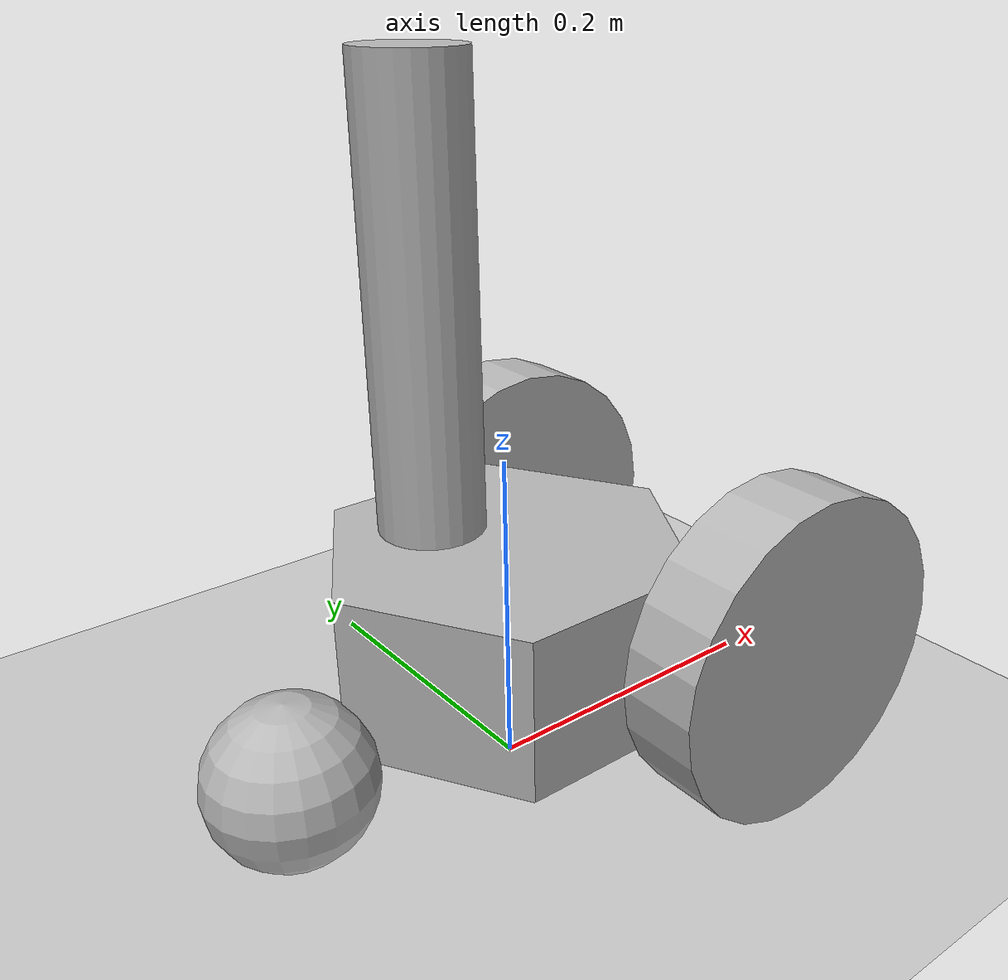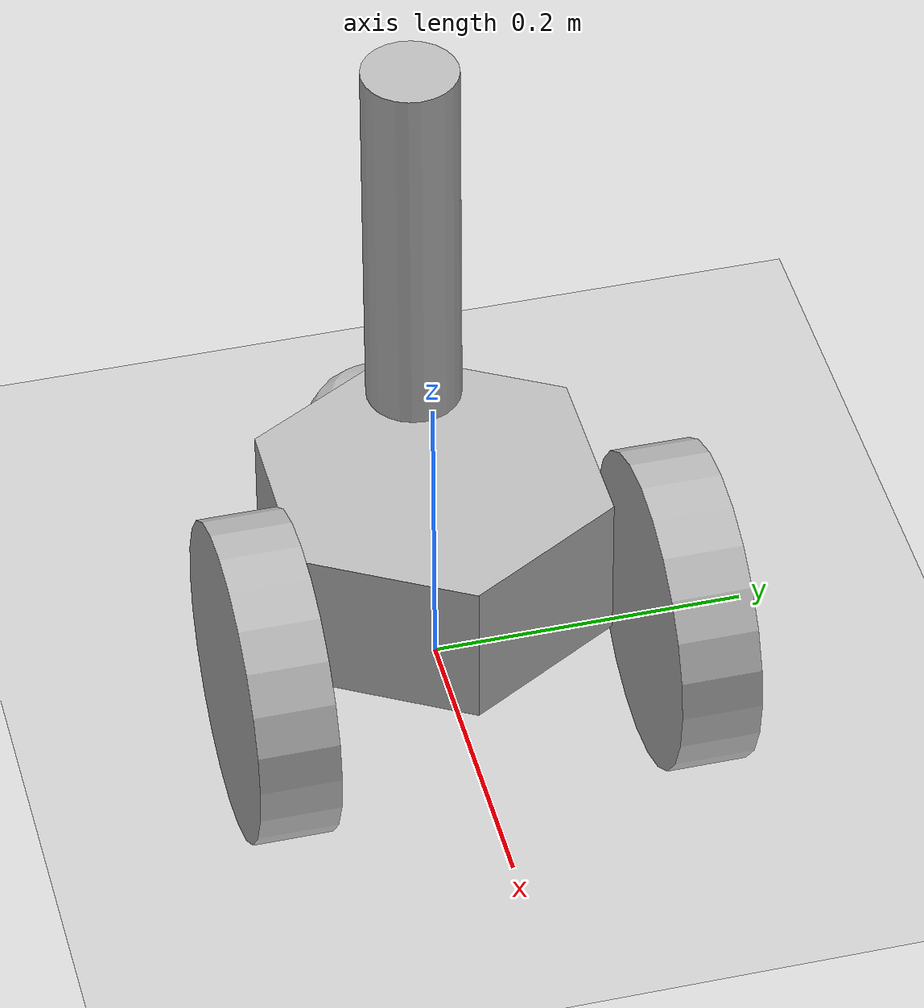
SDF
<sdf version="1.6">
 <world name="default">
  <include><uri>model://my_robot</uri><name>robot1</name><static>false</static></include>
  <light name="sun" type="directional">
   <pose>0 0 10 0 -0 0</pose>
   <diffuse>0.8 0.8 0.8 1</diffuse>
   <specular>0.2 0.2 0.2 1</specular>
   <attenuation>
    <range>1000</range>
    <constant>0.9</constant>
    <linear>0.01</linear>
    <quadratic>0.001</quadratic>
   </attenuation>
   <direction>-0.5 0.1 -0.9</direction>
  </light>
  <model name="ground_plane">
   <static>1</static>
   <link name="link">
    <collision name="collision">
     <geometry><plane><normal>0 0 1</normal><size>100 100</size></plane></geometry>
     <surface><friction><ode><mu>100</mu><mu2>50</mu2></ode></friction></surface>
    </collision>
    <visual name="visual">
     <cast_shadows>0</cast_shadows>
     <geometry><plane><normal>0 0 1</normal><size>100 100</size></plane></geometry>
     <material>
      <script><uri>file://media/materials/scripts/gazebo.material</uri><name>Gazebo/Grey</name></script>
     </material>
    </visual>
   </link>
  </model>
  <gravity>0 0 -9.8</gravity>
  <magnetic_field>6e-06 2.3e-05 -4.2e-05</magnetic_field>
  <atmosphere type="adiabatic"/>
  <physics name="default_physics" default="0" type="ode">
   <max_step_size>0.001</max_step_size>
   <real_time_factor>1</real_time_factor>
   <real_time_update_rate>1000</real_time_update_rate>
  </physics>
  <scene><ambient>0.4 0.4 0.4 1</ambient><background>0.7 0.7 0.7 1</background><shadows>1</shadows></scene>
  <audio><device>default</device></audio>
  <spherical_coordinates>
   <surface_model>EARTH_WGS84</surface_model>
   <latitude_deg>0</latitude_deg>
   <longitude_deg>0</longitude_deg>
   <elevation>0</elevation>
   <heading_deg>0</heading_deg>
  </spherical_coordinates>
 </world>
</sdf>

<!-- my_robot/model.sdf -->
<sdf version="1.5">
  <model name="robot">
    <static>false</static>
    <link name="base_link">
      <pose>0 0 .1 0 0 0</pose>
			<inertial>
				<pose>0 0 0 0 0 0</pose>
				<mass>10</mass>
				<inertia>
					<ixx>0.0375277675</ixx>
					<ixy>-4.24524231078E-13</ixy>
					<ixz>-6.93229981287E-20</ixz>
					<iyy>0.0375277675</iyy>
					<iyz>1.588186776165E-19</iyz>
					<izz>0.0577350269</izz>
				</inertia>
			</inertial>
      <collision name="collision">
        <geometry>
		      <mesh>
		        <uri>model://my_robot/my_body.stl</uri>
		      </mesh>
        </geometry>
      </collision>
      <visual name="visual">
        <geometry>
		      <mesh>
		        <uri>model://my_robot/my_body.stl</uri>
		      </mesh>
        </geometry>
      </visual>

      <collision name='caster_collision'>
        <pose>-0.15 0 -0.05 0 0 0</pose>
        <geometry>
          <sphere>
            <radius>.05</radius>
          </sphere>
        </geometry>

        <surface>
          <friction>
            <ode>
              <mu>0</mu>
              <mu2>0</mu2>
              <slip1>1.0</slip1>
              <slip2>1.0</slip2>
            </ode>
          </friction>
        </surface>
      </collision>

		  <visual name='caster_visual'>
		    <pose>-0.15 0 -0.05 0 0 0</pose>
		    <geometry>
		      <sphere>
		        <radius>.05</radius>
		      </sphere>
		    </geometry>
		  </visual>
    </link>

    <link name="left_wheel">
      <pose>0.1 0.13 0.1 0 1.5707 1.5707</pose>
			<inertial>
				<pose>0 0 0 0 0 0</pose>
				<mass>2</mass>
				<inertia>
					<ixx>0.0048923761</ixx>
					<ixy>3.9035319588485E-19</ixy>
					<ixz>-9.1320739625865E-20</ixz>
					<iyy>0.0048923761</iyy>
					<iyz>-1.7930785295525E-21</iyz>
					<izz>0.0090320789</izz>
				</inertia>
			</inertial>
      <collision name="collision">
        <geometry>
          <cylinder>
            <radius>.1</radius>
            <length>.05</length>
          </cylinder>
        </geometry>
      </collision>
      <visual name="visual">
        <geometry>
          <cylinder>
            <radius>.1</radius>
            <length>.05</length>
          </cylinder>
        </geometry>
      </visual>
    </link>

    <link name="arm1">
      <pose>-0.05 0 0.3 0 0 0</pose>
			<inertial>
				<pose>0 0 0 0 0 0</pose>
				<mass>0.5</mass>
				<inertia>
					<ixx>0.0026884179</ixx>
					<ixy>8.15623347798E-21</ixy>
					<ixz>1.852884572119E-20</ixz>
					<iyy>0.0026884179</iyy>
					<iyz>7.58262653183E-37</iyz>
					<izz>0.0002226604</izz>
				</inertia>
			</inertial>
      <collision name="collision">
        <geometry>
          <cylinder>
            <radius>0.030</radius>
            <length>0.25</length>
          </cylinder>
        </geometry>
      </collision>
      <visual name="visual">
        <geometry>
          <cylinder>
            <radius>0.030</radius>
            <length>0.25</length>
          </cylinder>
        </geometry>
      </visual>
    </link>

    <link name="right_wheel">
      <pose>0.1 -0.13 0.1 0 1.5707 1.5707</pose>
			<inertial>
				<pose>0 0 0 0 0 0</pose>
				<mass>2</mass>
				<inertia>
					<ixx>0.0048923761</ixx>
					<ixy>3.9035319588485E-19</ixy>
					<ixz>-9.1320739625865E-20</ixz>
					<iyy>0.0048923761</iyy>
					<iyz>-1.7930785295525E-21</iyz>
					<izz>0.0090320789</izz>
				</inertia>
			</inertial>
      <collision name="collision">
        <geometry>
          <cylinder>
            <radius>.1</radius>
            <length>.05</length>
          </cylinder>
        </geometry>
      </collision>
      <visual name="visual">
        <geometry>
          <cylinder>
            <radius>.1</radius>
            <length>.05</length>
          </cylinder>
        </geometry>
      </visual>
    </link>

    <joint type="revolute" name="shoulder">
      <pose>0 0 -0.127 0 0 0</pose>
      <child>arm1</child>
      <parent>base_link</parent>
      <axis>
        <xyz>0 1 0</xyz>
        <limit>
          <upper>1.57</upper>
          <lower>-1.57</lower>
        </limit>
      </axis>
    </joint>

    <joint type="revolute" name="left_wheel_hinge">
      <pose>0 0 0 0 0 0</pose>
      <child>left_wheel</child>
      <parent>base_link</parent>
      <axis>
        <xyz>0 0 1</xyz>
      </axis>
    </joint>

    <joint type="revolute" name="right_wheel_hinge">
      <pose>0 0 0 0 0 0</pose>
      <child>right_wheel</child>
      <parent>base_link</parent>
      <axis>
        <xyz>0 0 1</xyz>
      </axis>
    </joint>

		<plugin filename="libMyDiffDrivePlugin.so" name="diff_drive">
			<left_joint>left_wheel_hinge</left_joint>
			<right_joint>right_wheel_hinge</right_joint>
			<shoulderTAG>shoulder</shoulderTAG>
			<torque>5</torque>
		</plugin>

  </model>
</sdf>
